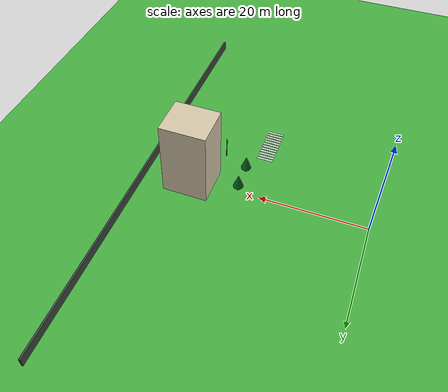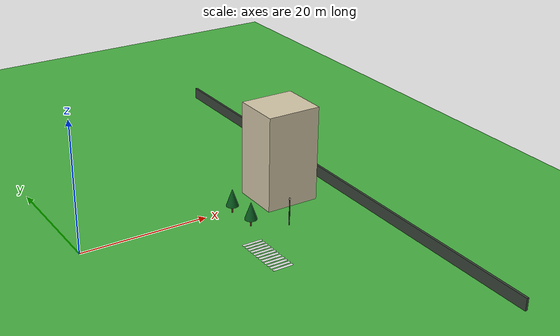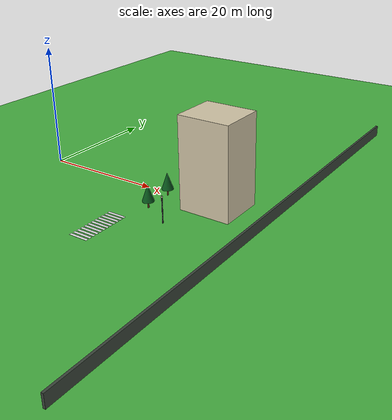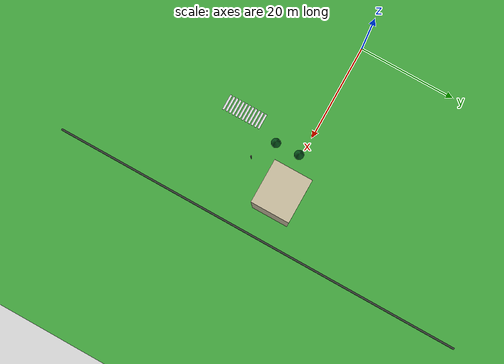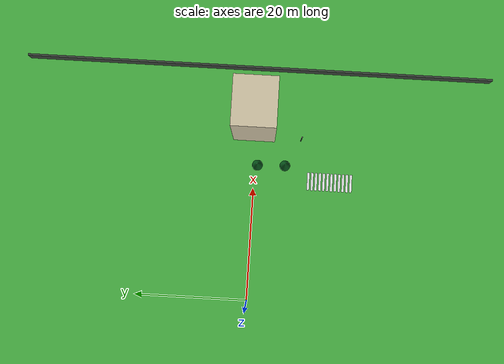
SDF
<sdf version="1.10">
 <world name="city_second">
  <model name="ground_plane">
   <static>true</static>
   <link name="link">
    <collision name="collision">
     <geometry><plane><normal>0 0 1</normal><size>300 300</size></plane></geometry>
    </collision>
    <visual name="visual">
     <geometry><plane><normal>0 0 1</normal><size>300 300</size></plane></geometry>
     <material>
      <ambient>0.280000001 0.689999998 0.25999999 1</ambient>
      <diffuse>0.280000001 0.689999998 0.25999999 1</diffuse>
      <specular>0.0299999993 0.0299999993 0.0299999993 1</specular>
     </material>
    </visual>
    <inertial>
     <mass>1</mass>
     <inertia><ixx>1</ixx><ixy>0</ixy><ixz>0</ixz><iyy>1</iyy><iyz>0</iyz><izz>1</izz></inertia>
    </inertial>
   </link>
  </model>
  <model name="fence_east">
   <static>true</static>
   <pose>42 0 0.94999999999999996 0 0 0</pose>
   <link name="link">
    <collision name="collision">
     <geometry><box><size>0.34999999999999998 84.5 1.8999999999999999</size></box></geometry>
    </collision>
    <visual name="visual">
     <geometry><box><size>0.34999999999999998 84.5 1.8999999999999999</size></box></geometry>
     <material>
      <ambient>0.230000004 0.270000011 0.230000004 1</ambient>
      <diffuse>0.230000004 0.270000011 0.230000004 1</diffuse>
      <specular>0.0299999993 0.0299999993 0.0299999993 1</specular>
     </material>
    </visual>
    <inertial>
     <mass>1</mass>
     <inertia><ixx>1</ixx><ixy>0</ixy><ixz>0</ixz><iyy>1</iyy><iyz>0</iyz><izz>1</izz></inertia>
    </inertial>
   </link>
  </model>
  <model name="house_2_3_1">
   <static>true</static>
   <pose>32.993699999999997 0.30851699999999999 7.5 0 0 0</pose>
   <link name="link">
    <collision name="collision"><geometry><box><size>8.5 7.5 15</size></box></geometry></collision>
    <visual name="visual">
     <geometry><box><size>8.5 7.5 15</size></box></geometry>
     <material>
      <ambient>0.829999983 0.779999971 0.660000026 1</ambient>
      <diffuse>0.829999983 0.779999971 0.660000026 1</diffuse>
      <specular>0.0299999993 0.0299999993 0.0299999993 1</specular>
     </material>
    </visual>
    <inertial>
     <mass>1</mass>
     <inertia><ixx>1</ixx><ixy>0</ixy><ixz>0</ixz><iyy>1</iyy><iyz>0</iyz><izz>1</izz></inertia>
    </inertial>
   </link>
  </model>
  <model name="crosswalk_v_2_1_east_5_4">
   <static>true</static>
   <pose>21.8748 -13.7462 0.017000000000000001 0 0 0</pose>
   <link name="stripe_1">
    <collision name="collision">
     <geometry><box><size>3.2000000000000002 0.41999999999999998 0.01</size></box></geometry>
    </collision>
    <visual name="visual">
     <geometry><box><size>3.2000000000000002 0.41999999999999998 0.01</size></box></geometry>
     <material>
      <ambient>0.920000017 0.920000017 0.930000007 1</ambient>
      <diffuse>0.920000017 0.920000017 0.930000007 1</diffuse>
      <specular>0.0299999993 0.0299999993 0.0299999993 1</specular>
     </material>
    </visual>
    <pose>0 -3.8500000000000001 0 0 0 0</pose>
    <inertial>
     <mass>1</mass>
     <inertia><ixx>1</ixx><ixy>0</ixy><ixz>0</ixz><iyy>1</iyy><iyz>0</iyz><izz>1</izz></inertia>
    </inertial>
   </link>
   <link name="stripe_2">
    <collision name="collision">
     <geometry><box><size>3.2000000000000002 0.41999999999999998 0.01</size></box></geometry>
    </collision>
    <visual name="visual">
     <geometry><box><size>3.2000000000000002 0.41999999999999998 0.01</size></box></geometry>
     <material>
      <ambient>0.920000017 0.920000017 0.930000007 1</ambient>
      <diffuse>0.920000017 0.920000017 0.930000007 1</diffuse>
      <specular>0.0299999993 0.0299999993 0.0299999993 1</specular>
     </material>
    </visual>
    <pose>0 -3.1500000000000004 0 0 0 0</pose>
    <inertial>
     <mass>1</mass>
     <inertia><ixx>1</ixx><ixy>0</ixy><ixz>0</ixz><iyy>1</iyy><iyz>0</iyz><izz>1</izz></inertia>
    </inertial>
   </link>
   <link name="stripe_3">
    <collision name="collision">
     <geometry><box><size>3.2000000000000002 0.41999999999999998 0.01</size></box></geometry>
    </collision>
    <visual name="visual">
     <geometry><box><size>3.2000000000000002 0.41999999999999998 0.01</size></box></geometry>
     <material>
      <ambient>0.920000017 0.920000017 0.930000007 1</ambient>
      <diffuse>0.920000017 0.920000017 0.930000007 1</diffuse>
      <specular>0.0299999993 0.0299999993 0.0299999993 1</specular>
     </material>
    </visual>
    <pose>0 -2.4500000000000011 0 0 0 0</pose>
    <inertial>
     <mass>1</mass>
     <inertia><ixx>1</ixx><ixy>0</ixy><ixz>0</ixz><iyy>1</iyy><iyz>0</iyz><izz>1</izz></inertia>
    </inertial>
   </link>
   <link name="stripe_4">
    <collision name="collision">
     <geometry><box><size>3.2000000000000002 0.41999999999999998 0.01</size></box></geometry>
    </collision>
    <visual name="visual">
     <geometry><box><size>3.2000000000000002 0.41999999999999998 0.01</size></box></geometry>
     <material>
      <ambient>0.920000017 0.920000017 0.930000007 1</ambient>
      <diffuse>0.920000017 0.920000017 0.930000007 1</diffuse>
      <specular>0.0299999993 0.0299999993 0.0299999993 1</specular>
     </material>
    </visual>
    <pose>0 -1.75 0 0 0 0</pose>
    <inertial>
     <mass>1</mass>
     <inertia><ixx>1</ixx><ixy>0</ixy><ixz>0</ixz><iyy>1</iyy><iyz>0</iyz><izz>1</izz></inertia>
    </inertial>
   </link>
   <link name="stripe_5">
    <collision name="collision">
     <geometry><box><size>3.2000000000000002 0.41999999999999998 0.01</size></box></geometry>
    </collision>
    <visual name="visual">
     <geometry><box><size>3.2000000000000002 0.41999999999999998 0.01</size></box></geometry>
     <material>
      <ambient>0.920000017 0.920000017 0.930000007 1</ambient>
      <diffuse>0.920000017 0.920000017 0.930000007 1</diffuse>
      <specular>0.0299999993 0.0299999993 0.0299999993 1</specular>
     </material>
    </visual>
    <pose>0 -1.0500000000000007 0 0 0 0</pose>
    <inertial>
     <mass>1</mass>
     <inertia><ixx>1</ixx><ixy>0</ixy><ixz>0</ixz><iyy>1</iyy><iyz>0</iyz><izz>1</izz></inertia>
    </inertial>
   </link>
   <link name="stripe_6">
    <collision name="collision">
     <geometry><box><size>3.2000000000000002 0.41999999999999998 0.01</size></box></geometry>
    </collision>
    <visual name="visual">
     <geometry><box><size>3.2000000000000002 0.41999999999999998 0.01</size></box></geometry>
     <material>
      <ambient>0.920000017 0.920000017 0.930000007 1</ambient>
      <diffuse>0.920000017 0.920000017 0.930000007 1</diffuse>
      <specular>0.0299999993 0.0299999993 0.0299999993 1</specular>
     </material>
    </visual>
    <pose>0 -0.34999999999999964 0 0 0 0</pose>
    <inertial>
     <mass>1</mass>
     <inertia><ixx>1</ixx><ixy>0</ixy><ixz>0</ixz><iyy>1</iyy><iyz>0</iyz><izz>1</izz></inertia>
    </inertial>
   </link>
   <link name="stripe_7">
    <collision name="collision">
     <geometry><box><size>3.2000000000000002 0.41999999999999998 0.01</size></box></geometry>
    </collision>
    <visual name="visual">
     <geometry><box><size>3.2000000000000002 0.41999999999999998 0.01</size></box></geometry>
     <material>
      <ambient>0.920000017 0.920000017 0.930000007 1</ambient>
      <diffuse>0.920000017 0.920000017 0.930000007 1</diffuse>
      <specular>0.0299999993 0.0299999993 0.0299999993 1</specular>
     </material>
    </visual>
    <pose>0 0.34999999999999964 0 0 0 0</pose>
    <inertial>
     <mass>1</mass>
     <inertia><ixx>1</ixx><ixy>0</ixy><ixz>0</ixz><iyy>1</iyy><iyz>0</iyz><izz>1</izz></inertia>
    </inertial>
   </link>
   <link name="stripe_8">
    <collision name="collision">
     <geometry><box><size>3.2000000000000002 0.41999999999999998 0.01</size></box></geometry>
    </collision>
    <visual name="visual">
     <geometry><box><size>3.2000000000000002 0.41999999999999998 0.01</size></box></geometry>
     <material>
      <ambient>0.920000017 0.920000017 0.930000007 1</ambient>
      <diffuse>0.920000017 0.920000017 0.930000007 1</diffuse>
      <specular>0.0299999993 0.0299999993 0.0299999993 1</specular>
     </material>
    </visual>
    <pose>0 1.0500000000000007 0 0 0 0</pose>
    <inertial>
     <mass>1</mass>
     <inertia><ixx>1</ixx><ixy>0</ixy><ixz>0</ixz><iyy>1</iyy><iyz>0</iyz><izz>1</izz></inertia>
    </inertial>
   </link>
   <link name="stripe_9">
    <collision name="collision">
     <geometry><box><size>3.2000000000000002 0.41999999999999998 0.01</size></box></geometry>
    </collision>
    <visual name="visual">
     <geometry><box><size>3.2000000000000002 0.41999999999999998 0.01</size></box></geometry>
     <material>
      <ambient>0.920000017 0.920000017 0.930000007 1</ambient>
      <diffuse>0.920000017 0.920000017 0.930000007 1</diffuse>
      <specular>0.0299999993 0.0299999993 0.0299999993 1</specular>
     </material>
    </visual>
    <pose>0 1.75 0 0 0 0</pose>
    <inertial>
     <mass>1</mass>
     <inertia><ixx>1</ixx><ixy>0</ixy><ixz>0</ixz><iyy>1</iyy><iyz>0</iyz><izz>1</izz></inertia>
    </inertial>
   </link>
   <link name="stripe_10">
    <collision name="collision">
     <geometry><box><size>3.2000000000000002 0.41999999999999998 0.01</size></box></geometry>
    </collision>
    <visual name="visual">
     <geometry><box><size>3.2000000000000002 0.41999999999999998 0.01</size></box></geometry>
     <material>
      <ambient>0.920000017 0.920000017 0.930000007 1</ambient>
      <diffuse>0.920000017 0.920000017 0.930000007 1</diffuse>
      <specular>0.0299999993 0.0299999993 0.0299999993 1</specular>
     </material>
    </visual>
    <pose>0 2.4500000000000011 0 0 0 0</pose>
    <inertial>
     <mass>1</mass>
     <inertia><ixx>1</ixx><ixy>0</ixy><ixz>0</ixz><iyy>1</iyy><iyz>0</iyz><izz>1</izz></inertia>
    </inertial>
   </link>
   <link name="stripe_11">
    <collision name="collision">
     <geometry><box><size>3.2000000000000002 0.41999999999999998 0.01</size></box></geometry>
    </collision>
    <visual name="visual">
     <geometry><box><size>3.2000000000000002 0.41999999999999998 0.01</size></box></geometry>
     <material>
      <ambient>0.920000017 0.920000017 0.930000007 1</ambient>
      <diffuse>0.920000017 0.920000017 0.930000007 1</diffuse>
      <specular>0.0299999993 0.0299999993 0.0299999993 1</specular>
     </material>
    </visual>
    <pose>0 3.1500000000000004 0 0 0 0</pose>
    <inertial>
     <mass>1</mass>
     <inertia><ixx>1</ixx><ixy>0</ixy><ixz>0</ixz><iyy>1</iyy><iyz>0</iyz><izz>1</izz></inertia>
    </inertial>
   </link>
   <link name="stripe_12">
    <collision name="collision">
     <geometry><box><size>3.2000000000000002 0.41999999999999998 0.01</size></box></geometry>
    </collision>
    <visual name="visual">
     <geometry><box><size>3.2000000000000002 0.41999999999999998 0.01</size></box></geometry>
     <material>
      <ambient>0.920000017 0.920000017 0.930000007 1</ambient>
      <diffuse>0.920000017 0.920000017 0.930000007 1</diffuse>
      <specular>0.0299999993 0.0299999993 0.0299999993 1</specular>
     </material>
    </visual>
    <pose>0 3.8499999999999996 0 0 0 0</pose>
    <inertial>
     <mass>1</mass>
     <inertia><ixx>1</ixx><ixy>0</ixy><ixz>0</ixz><iyy>1</iyy><iyz>0</iyz><izz>1</izz></inertia>
    </inertial>
   </link>
  </model>
  <model name="lamp_1_2_7">
   <static>true</static>
   <pose>29.188400000000001 -8.1782299999999992 2.2000000000000002 0 0 0</pose>
   <link name="link">
    <collision name="collision">
     <geometry>
      <cylinder><radius>0.080000000000000002</radius><length>4.4000000000000004</length></cylinder>
     </geometry>
    </collision>
    <visual name="pole">
     <geometry>
      <cylinder><radius>0.080000000000000002</radius><length>4.4000000000000004</length></cylinder>
     </geometry>
     <material>
      <ambient>0.349999994 0.360000014 0.379999995 1</ambient>
      <diffuse>0.349999994 0.360000014 0.379999995 1</diffuse>
      <specular>0.0299999993 0.0299999993 0.0299999993 1</specular>
     </material>
    </visual>
    <visual name="lamp_head">
     <pose>0 0 2 0 0 0</pose>
     <geometry><sphere><radius>0.14000000000000001</radius></sphere></geometry>
     <material>
      <ambient>0.959999979 0.939999998 0.779999971 1</ambient>
      <diffuse>0.959999979 0.939999998 0.779999971 1</diffuse>
      <specular>0.0299999993 0.0299999993 0.0299999993 1</specular>
     </material>
    </visual>
    <inertial>
     <mass>1</mass>
     <inertia><ixx>1</ixx><ixy>0</ixy><ixz>0</ixz><iyy>1</iyy><iyz>0</iyz><izz>1</izz></inertia>
    </inertial>
   </link>
  </model>
  <model name="Pine Tree_10">
   <static>true</static>
   <pose>24.3462 -5.4889299999999999 0 0 0 0</pose>
   <link name="link">
    <collision name="footprint">
     <pose>0 0 0.050000000000000003 0 0 0</pose>
     <geometry>
      <cylinder><radius>0.65000000000000002</radius><length>0.10000000000000001</length></cylinder>
     </geometry>
    </collision>
    <visual name="trunk">
     <pose>0 0 0.90000000000000002 0 0 0</pose>
     <geometry><cylinder><radius>0.13</radius><length>1.8</length></cylinder></geometry>
     <material>
      <ambient>0.360000014 0.200000003 0.100000001 1</ambient>
      <diffuse>0.360000014 0.200000003 0.100000001 1</diffuse>
      <specular>0.119999997 0.119999997 0.119999997 1</specular>
      <emissive>0 0 0 1</emissive>
     </material>
    </visual>
    <visual name="crown">
     <pose>0 0 2.4500000000000002 0 0 0</pose>
     <geometry><cone><radius>0.94999999999999996</radius><length>2.7000000000000002</length></cone></geometry>
     <material>
      <ambient>0.0299999993 0.340000004 0.109999999 1</ambient>
      <diffuse>0.0299999993 0.340000004 0.109999999 1</diffuse>
      <specular>0.119999997 0.119999997 0.119999997 1</specular>
      <emissive>0 0 0 1</emissive>
     </material>
    </visual>
    <inertial>
     <mass>1</mass>
     <inertia><ixx>1</ixx><ixy>0</ixy><ixz>0</ixz><iyy>1</iyy><iyz>0</iyz><izz>1</izz></inertia>
    </inertial>
   </link>
  </model>
  <model name="Pine Tree_13">
   <static>true</static>
   <pose>24.1953 -0.55246899999999999 0 0 0 0</pose>
   <link name="link">
    <collision name="footprint">
     <pose>0 0 0.050000000000000003 0 0 0</pose>
     <geometry>
      <cylinder><radius>0.65000000000000002</radius><length>0.10000000000000001</length></cylinder>
     </geometry>
    </collision>
    <visual name="trunk">
     <pose>0 0 0.90000000000000002 0 0 0</pose>
     <geometry><cylinder><radius>0.13</radius><length>1.8</length></cylinder></geometry>
     <material>
      <ambient>0.360000014 0.200000003 0.100000001 1</ambient>
      <diffuse>0.360000014 0.200000003 0.100000001 1</diffuse>
      <specular>0.119999997 0.119999997 0.119999997 1</specular>
      <emissive>0 0 0 1</emissive>
     </material>
    </visual>
    <visual name="crown">
     <pose>0 0 2.4500000000000002 0 0 0</pose>
     <geometry><cone><radius>0.94999999999999996</radius><length>2.7000000000000002</length></cone></geometry>
     <material>
      <ambient>0.0299999993 0.340000004 0.109999999 1</ambient>
      <diffuse>0.0299999993 0.340000004 0.109999999 1</diffuse>
      <specular>0.119999997 0.119999997 0.119999997 1</specular>
      <emissive>0 0 0 1</emissive>
     </material>
    </visual>
    <inertial>
     <mass>1</mass>
     <inertia><ixx>1</ixx><ixy>0</ixy><ixz>0</ixz><iyy>1</iyy><iyz>0</iyz><izz>1</izz></inertia>
    </inertial>
   </link>
  </model>
 </world>
</sdf>
